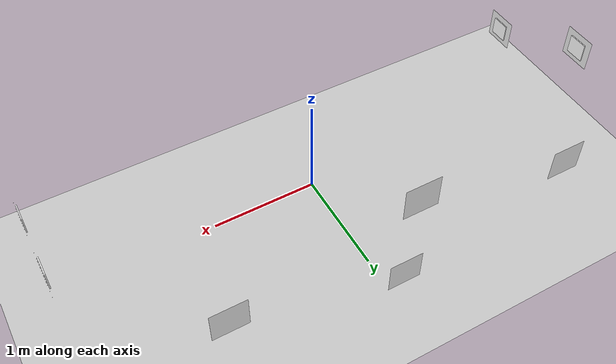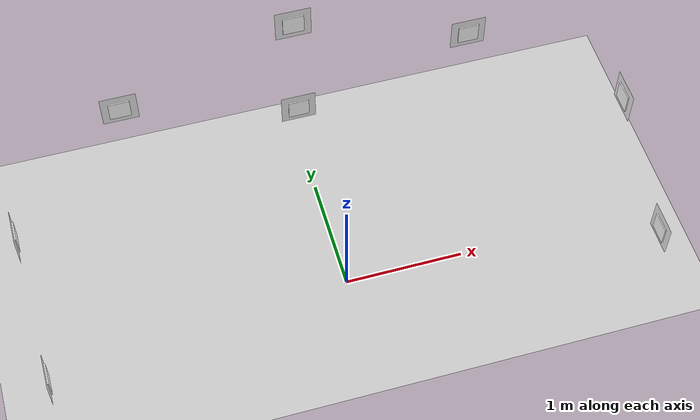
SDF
<sdf version="1.6">
 <world name="default">
  <light name="sun" type="directional">
   <pose>0 0 10 0 -0 0</pose>
   <diffuse>0.8 0.8 0.8 1</diffuse>
   <specular>0.2 0.2 0.2 1</specular>
   <attenuation>
    <range>1000</range>
    <constant>0.9</constant>
    <linear>0.01</linear>
    <quadratic>0.001</quadratic>
   </attenuation>
   <direction>-0.5 0.1 -0.9</direction>
  </light>
  <model name="ground_plane">
   <static>1</static>
   <link name="link">
    <collision name="collision">
     <geometry><plane><normal>0 0 1</normal><size>100 100</size></plane></geometry>
     <surface>
      <contact><collide_bitmask>65535</collide_bitmask></contact>
      <friction><ode><mu>100</mu><mu2>50</mu2></ode></friction>
     </surface>
    </collision>
    <visual name="visual">
     <cast_shadows>0</cast_shadows>
     <geometry><plane><normal>0 0 1</normal><size>100 100</size></plane></geometry>
     <material>
      <script><uri>file://media/materials/scripts/gazebo.material</uri><name>Gazebo/Grey</name></script>
     </material>
    </visual>
   </link>
  </model>
  <gravity>0 0 -9.8</gravity>
  <magnetic_field>6e-06 2.3e-05 -4.2e-05</magnetic_field>
  <atmosphere type="adiabatic"/>
  <physics name="default_physics" default="0" type="ode">
   <max_step_size>0.001</max_step_size>
   <real_time_factor>1</real_time_factor>
   <real_time_update_rate>1000</real_time_update_rate>
   <ode><constraints><contact_max_correcting_vel>100000.0</contact_max_correcting_vel></constraints></ode>
  </physics>
  <scene><ambient>0.4 0.4 0.4 1</ambient><background>0.7 0.7 0.7 1</background><shadows>1</shadows></scene>
  <audio><device>default</device></audio>
  <spherical_coordinates>
   <surface_model>EARTH_WGS84</surface_model>
   <latitude_deg>0</latitude_deg>
   <longitude_deg>0</longitude_deg>
   <elevation>0</elevation>
   <heading_deg>0</heading_deg>
  </spherical_coordinates>
  <model name="aruco_visual_marker_0">
   <link name="marker">
    <visual name="visual">
     <geometry><box><size>0.1778 0.1778 0.01</size></box></geometry>
     <material>
      <script>
       <uri>model://aruco_visual_marker_0/materials/scripts</uri>
       <uri>model://aruco_visual_marker_0/materials/textures</uri>
       <name>ArucoVisualMarker0/Marker</name>
      </script>
      <ambient>1 1 1 1</ambient>
      <diffuse>1 1 1 1</diffuse>
      <specular>0 0 0 1</specular>
      <emissive>1 1 1 0</emissive>
      <shader type="vertex"><normal_map>__default__</normal_map></shader>
     </material>
    </visual>
    <collision name="collision"><geometry><box><size>0.1778 0.1778 1e-05</size></box></geometry></collision>
   </link>
   <link name="marker_pad">
    <pose frame="marker">0 0 -0.011 0 -0 0</pose>
    <visual name="visual">
     <geometry><box><size>0.3 0.3 1e-05</size></box></geometry>
     <material>
      <lighting>1</lighting>
      <script><uri>file://media/materials/scripts/gazebo.material</uri><name>Gazebo/White</name></script>
      <ambient>0.3 0.3 0.3 1</ambient>
      <diffuse>0.7 0.7 0.7 1</diffuse>
      <specular>0.01 0.01 0.01 1</specular>
      <emissive>1 1 1 0</emissive>
      <shader type="vertex"><normal_map>__default__</normal_map></shader>
     </material>
    </visual>
    <collision name="collision"><geometry><box><size>0.1778 0.1778 1e-05</size></box></geometry></collision>
   </link>
   <joint name="marker_JOINT_marker_pad" type="revolute">
    <parent>marker</parent>
    <child>marker_pad</child>
    <axis>
     <xyz>0 0 1</xyz>
     <limit><upper>0</upper><lower>0</lower></limit>
     <use_parent_model_frame>0</use_parent_model_frame>
     <dynamics><spring_reference>0</spring_reference><spring_stiffness>0</spring_stiffness></dynamics>
    </axis>
   </joint>
   <static>1</static>
   <pose>1.5 1.5 1 -0 -1.57 1.57</pose>
  </model>
  <model name="aruco_visual_marker_1">
   <link name="marker">
    <visual name="visual">
     <geometry><box><size>0.1778 0.1778 0.01</size></box></geometry>
     <material>
      <script>
       <uri>model://aruco_visual_marker_1/materials/scripts</uri>
       <uri>model://aruco_visual_marker_1/materials/textures</uri>
       <name>ArucoVisualMarker1/Marker</name>
      </script>
      <ambient>1 1 1 1</ambient>
      <diffuse>1 1 1 1</diffuse>
      <specular>0 0 0 1</specular>
      <emissive>1 1 1 0</emissive>
      <shader type="vertex"><normal_map>__default__</normal_map></shader>
     </material>
    </visual>
    <collision name="collision"><geometry><box><size>0.1778 0.1778 1e-05</size></box></geometry></collision>
   </link>
   <link name="marker_pad">
    <pose frame="marker">0 0 -0.011 0 -0 0</pose>
    <visual name="visual">
     <geometry><box><size>0.3 0.3 1e-05</size></box></geometry>
     <material>
      <lighting>1</lighting>
      <script><uri>file://media/materials/scripts/gazebo.material</uri><name>Gazebo/White</name></script>
      <ambient>0.3 0.3 0.3 1</ambient>
      <diffuse>0.7 0.7 0.7 1</diffuse>
      <specular>0.01 0.01 0.01 1</specular>
      <emissive>1 1 1 0</emissive>
      <shader type="vertex"><normal_map>__default__</normal_map></shader>
     </material>
    </visual>
    <collision name="collision"><geometry><box><size>0.1778 0.1778 1e-05</size></box></geometry></collision>
   </link>
   <joint name="marker_JOINT_marker_pad" type="revolute">
    <parent>marker</parent>
    <child>marker_pad</child>
    <axis>
     <xyz>0 0 1</xyz>
     <limit><upper>0</upper><lower>0</lower></limit>
     <use_parent_model_frame>0</use_parent_model_frame>
     <dynamics><spring_reference>0</spring_reference><spring_stiffness>0</spring_stiffness></dynamics>
    </axis>
   </joint>
   <static>1</static>
   <pose>0 1.5 0.5 -0 -1.57 1.57</pose>
  </model>
  <model name="aruco_visual_marker_2">
   <link name="marker">
    <visual name="visual">
     <geometry><box><size>0.1778 0.1778 0.01</size></box></geometry>
     <material>
      <script>
       <uri>model://aruco_visual_marker_2/materials/scripts</uri>
       <uri>model://aruco_visual_marker_2/materials/textures</uri>
       <name>ArucoVisualMarker2/Marker</name>
      </script>
      <ambient>1 1 1 1</ambient>
      <diffuse>1 1 1 1</diffuse>
      <specular>0 0 0 1</specular>
      <emissive>1 1 1 0</emissive>
      <shader type="vertex"><normal_map>__default__</normal_map></shader>
     </material>
    </visual>
    <collision name="collision"><geometry><box><size>0.1778 0.1778 1e-05</size></box></geometry></collision>
   </link>
   <link name="marker_pad">
    <pose frame="marker">0 0 -0.011 0 -0 0</pose>
    <visual name="visual">
     <geometry><box><size>0.3 0.3 1e-05</size></box></geometry>
     <material>
      <lighting>1</lighting>
      <script><uri>file://media/materials/scripts/gazebo.material</uri><name>Gazebo/White</name></script>
      <ambient>0.3 0.3 0.3 1</ambient>
      <diffuse>0.7 0.7 0.7 1</diffuse>
      <specular>0.01 0.01 0.01 1</specular>
      <emissive>1 1 1 0</emissive>
      <shader type="vertex"><normal_map>__default__</normal_map></shader>
     </material>
    </visual>
    <collision name="collision"><geometry><box><size>0.1778 0.1778 1e-05</size></box></geometry></collision>
   </link>
   <joint name="marker_JOINT_marker_pad" type="revolute">
    <parent>marker</parent>
    <child>marker_pad</child>
    <axis>
     <xyz>0 0 1</xyz>
     <limit><upper>0</upper><lower>0</lower></limit>
     <use_parent_model_frame>0</use_parent_model_frame>
     <dynamics><spring_reference>0</spring_reference><spring_stiffness>0</spring_stiffness></dynamics>
    </axis>
   </joint>
   <static>1</static>
   <pose>-1.5 1.5 1 -0 -1.57 1.57</pose>
  </model>
  <model name="aruco_visual_marker_3">
   <link name="marker">
    <visual name="visual">
     <geometry><box><size>0.1778 0.1778 0.01</size></box></geometry>
     <material>
      <script>
       <uri>model://aruco_visual_marker_3/materials/scripts</uri>
       <uri>model://aruco_visual_marker_3/materials/textures</uri>
       <name>ArucoVisualMarker3/Marker</name>
      </script>
      <ambient>1 1 1 1</ambient>
      <diffuse>1 1 1 1</diffuse>
      <specular>0 0 0 1</specular>
      <emissive>1 1 1 0</emissive>
      <shader type="vertex"><normal_map>__default__</normal_map></shader>
     </material>
    </visual>
    <collision name="collision"><geometry><box><size>0.1778 0.1778 1e-05</size></box></geometry></collision>
   </link>
   <link name="marker_pad">
    <pose frame="marker">0 0 -0.01 0 -0 0</pose>
    <visual name="visual">
     <geometry><box><size>0.3 0.3 1e-05</size></box></geometry>
     <material>
      <lighting>1</lighting>
      <script><uri>file://media/materials/scripts/gazebo.material</uri><name>Gazebo/White</name></script>
      <ambient>0.3 0.3 0.3 1</ambient>
      <diffuse>0.7 0.7 0.7 1</diffuse>
      <specular>0.01 0.01 0.01 1</specular>
      <emissive>1 1 1 0</emissive>
      <shader type="vertex"><normal_map>__default__</normal_map></shader>
     </material>
    </visual>
    <collision name="collision"><geometry><box><size>0.1778 0.1778 1e-05</size></box></geometry></collision>
   </link>
   <joint name="marker_JOINT_marker_pad" type="revolute">
    <parent>marker</parent>
    <child>marker_pad</child>
    <axis>
     <xyz>0 0 1</xyz>
     <limit><upper>0</upper><lower>0</lower></limit>
     <use_parent_model_frame>0</use_parent_model_frame>
     <dynamics><spring_reference>0</spring_reference><spring_stiffness>0</spring_stiffness></dynamics>
    </axis>
   </joint>
   <static>1</static>
   <pose>-2.5 -0.5 0.5 3.14 -1.57 0</pose>
  </model>
  <model name="aruco_visual_marker_4">
   <link name="marker">
    <visual name="visual">
     <geometry><box><size>0.1778 0.1778 0.01</size></box></geometry>
     <material>
      <script>
       <uri>model://aruco_visual_marker_4/materials/scripts</uri>
       <uri>model://aruco_visual_marker_4/materials/textures</uri>
       <name>ArucoVisualMarker4/Marker</name>
      </script>
      <ambient>1 1 1 1</ambient>
      <diffuse>1 1 1 1</diffuse>
      <specular>0 0 0 1</specular>
      <emissive>1 1 1 0</emissive>
      <shader type="vertex"><normal_map>__default__</normal_map></shader>
     </material>
    </visual>
    <collision name="collision"><geometry><box><size>0.1778 0.1778 1e-05</size></box></geometry></collision>
   </link>
   <link name="marker_pad">
    <pose frame="marker">0 0 -0.01 0 -0 0</pose>
    <visual name="visual">
     <geometry><box><size>0.3 0.3 1e-05</size></box></geometry>
     <material>
      <lighting>1</lighting>
      <script><uri>file://media/materials/scripts/gazebo.material</uri><name>Gazebo/White</name></script>
      <ambient>0.3 0.3 0.3 1</ambient>
      <diffuse>0.7 0.7 0.7 1</diffuse>
      <specular>0.01 0.01 0.01 1</specular>
      <emissive>1 1 1 0</emissive>
      <shader type="vertex"><normal_map>__default__</normal_map></shader>
     </material>
    </visual>
    <collision name="collision"><geometry><box><size>0.1778 0.1778 1e-05</size></box></geometry></collision>
   </link>
   <joint name="marker_JOINT_marker_pad" type="revolute">
    <parent>marker</parent>
    <child>marker_pad</child>
    <axis>
     <xyz>0 0 1</xyz>
     <limit><upper>0</upper><lower>0</lower></limit>
     <use_parent_model_frame>0</use_parent_model_frame>
     <dynamics><spring_reference>0</spring_reference><spring_stiffness>0</spring_stiffness></dynamics>
    </axis>
   </joint>
   <static>1</static>
   <pose>-2.5 0.5 1 3.14 -1.57 0</pose>
  </model>
  <model name="aruco_visual_marker_5">
   <link name="marker">
    <visual name="visual">
     <geometry><box><size>0.1778 0.1778 0.01</size></box></geometry>
     <material>
      <script>
       <uri>model://aruco_visual_marker_5/materials/scripts</uri>
       <uri>model://aruco_visual_marker_5/materials/textures</uri>
       <name>ArucoVisualMarker5/Marker</name>
      </script>
      <ambient>1 1 1 1</ambient>
      <diffuse>1 1 1 1</diffuse>
      <specular>0 0 0 1</specular>
      <emissive>1 1 1 0</emissive>
      <shader type="vertex"><normal_map>__default__</normal_map></shader>
     </material>
    </visual>
    <collision name="collision"><geometry><box><size>0.1778 0.1778 1e-05</size></box></geometry></collision>
   </link>
   <link name="marker_pad">
    <pose frame="marker">0 0 -0.01 0 -0 0</pose>
    <visual name="visual">
     <geometry><box><size>0.3 0.3 1e-05</size></box></geometry>
     <material>
      <lighting>1</lighting>
      <script><uri>file://media/materials/scripts/gazebo.material</uri><name>Gazebo/White</name></script>
      <ambient>0.3 0.3 0.3 1</ambient>
      <diffuse>0.7 0.7 0.7 1</diffuse>
      <specular>0.01 0.01 0.01 1</specular>
      <emissive>1 1 1 0</emissive>
      <shader type="vertex"><normal_map>__default__</normal_map></shader>
     </material>
    </visual>
    <collision name="collision"><geometry><box><size>0.1778 0.1778 1e-05</size></box></geometry></collision>
   </link>
   <joint name="marker_JOINT_marker_pad" type="revolute">
    <parent>marker</parent>
    <child>marker_pad</child>
    <axis>
     <xyz>0 0 1</xyz>
     <limit><upper>0</upper><lower>0</lower></limit>
     <use_parent_model_frame>0</use_parent_model_frame>
     <dynamics><spring_reference>0</spring_reference><spring_stiffness>0</spring_stiffness></dynamics>
    </axis>
   </joint>
   <static>1</static>
   <pose>0 1.57 1.5 -0 -1.57 1.57</pose>
  </model>
  <model name="aruco_visual_marker_6">
   <link name="marker">
    <visual name="visual">
     <geometry><box><size>0.1778 0.1778 0.01</size></box></geometry>
     <material>
      <script>
       <uri>model://aruco_visual_marker_6/materials/scripts</uri>
       <uri>model://aruco_visual_marker_6/materials/textures</uri>
       <name>ArucoVisualMarker6/Marker</name>
      </script>
      <ambient>1 1 1 1</ambient>
      <diffuse>1 1 1 1</diffuse>
      <specular>0 0 0 1</specular>
      <emissive>1 1 1 0</emissive>
      <shader type="vertex"><normal_map>__default__</normal_map></shader>
     </material>
    </visual>
    <collision name="collision"><geometry><box><size>0.1778 0.1778 1e-05</size></box></geometry></collision>
   </link>
   <link name="marker_pad">
    <pose frame="marker">0 0 -0.01 0 -0 0</pose>
    <visual name="visual">
     <geometry><box><size>0.3 0.3 1e-05</size></box></geometry>
     <material>
      <lighting>1</lighting>
      <script><uri>file://media/materials/scripts/gazebo.material</uri><name>Gazebo/White</name></script>
      <ambient>0.3 0.3 0.3 1</ambient>
      <diffuse>0.7 0.7 0.7 1</diffuse>
      <specular>0.01 0.01 0.01 1</specular>
      <emissive>1 1 1 0</emissive>
      <shader type="vertex"><normal_map>__default__</normal_map></shader>
     </material>
    </visual>
    <collision name="collision"><geometry><box><size>0.1778 0.1778 1e-05</size></box></geometry></collision>
   </link>
   <joint name="marker_JOINT_marker_pad" type="revolute">
    <parent>marker</parent>
    <child>marker_pad</child>
    <axis>
     <xyz>0 0 1</xyz>
     <limit><upper>0</upper><lower>0</lower></limit>
     <use_parent_model_frame>0</use_parent_model_frame>
     <dynamics><spring_reference>0</spring_reference><spring_stiffness>0</spring_stiffness></dynamics>
    </axis>
   </joint>
   <static>1</static>
   <pose>2.5 0.5 1 0 -1.57 0</pose>
  </model>
  <model name="aruco_visual_marker_7">
   <link name="marker">
    <visual name="visual">
     <geometry><box><size>0.1778 0.1778 0.01</size></box></geometry>
     <material>
      <script>
       <uri>model://aruco_visual_marker_7/materials/scripts</uri>
       <uri>model://aruco_visual_marker_7/materials/textures</uri>
       <name>ArucoVisualMarker7/Marker</name>
      </script>
      <ambient>1 1 1 1</ambient>
      <diffuse>1 1 1 1</diffuse>
      <specular>0 0 0 1</specular>
      <emissive>1 1 1 0</emissive>
      <shader type="vertex"><normal_map>__default__</normal_map></shader>
     </material>
    </visual>
    <collision name="collision"><geometry><box><size>0.1778 0.1778 1e-05</size></box></geometry></collision>
   </link>
   <link name="marker_pad">
    <pose frame="marker">0 0 -0.01 0 -0 0</pose>
    <visual name="visual">
     <geometry><box><size>0.3 0.3 1e-05</size></box></geometry>
     <material>
      <lighting>1</lighting>
      <script><uri>file://media/materials/scripts/gazebo.material</uri><name>Gazebo/White</name></script>
      <ambient>0.3 0.3 0.3 1</ambient>
      <diffuse>0.7 0.7 0.7 1</diffuse>
      <specular>0.01 0.01 0.01 1</specular>
      <emissive>1 1 1 0</emissive>
      <shader type="vertex"><normal_map>__default__</normal_map></shader>
     </material>
    </visual>
    <collision name="collision"><geometry><box><size>0.1778 0.1778 1e-05</size></box></geometry></collision>
   </link>
   <joint name="marker_JOINT_marker_pad" type="revolute">
    <parent>marker</parent>
    <child>marker_pad</child>
    <axis>
     <xyz>0 0 1</xyz>
     <limit><upper>0</upper><lower>0</lower></limit>
     <use_parent_model_frame>0</use_parent_model_frame>
     <dynamics><spring_reference>0</spring_reference><spring_stiffness>0</spring_stiffness></dynamics>
    </axis>
   </joint>
   <static>1</static>
   <pose>2.5 -0.5 0.5 0 -1.57 0</pose>
  </model>
 </world>
</sdf>
